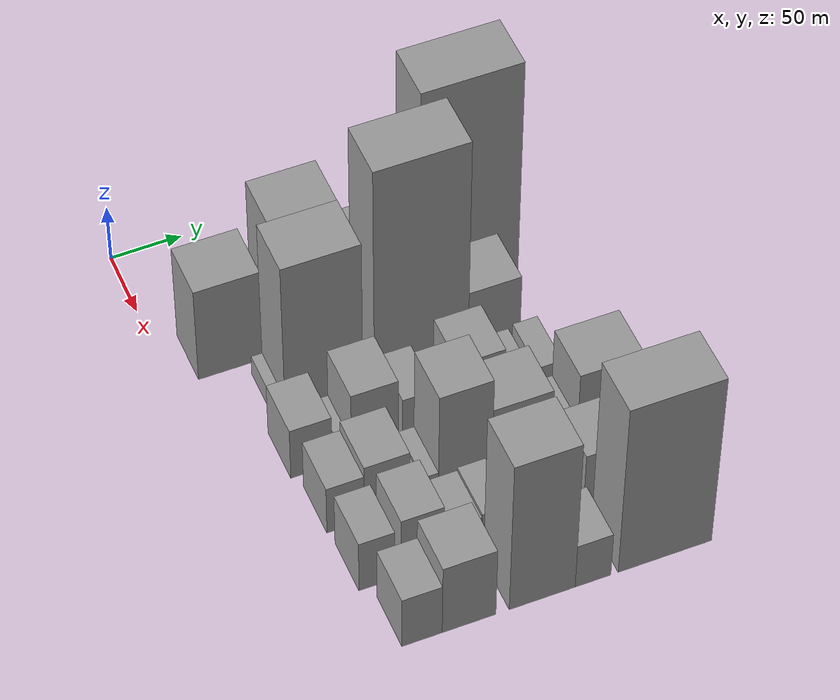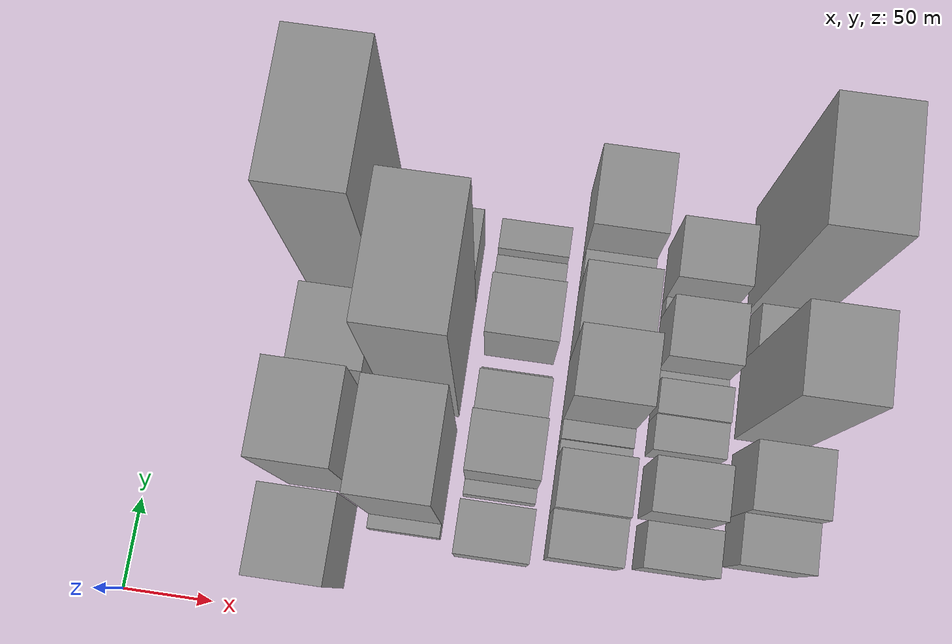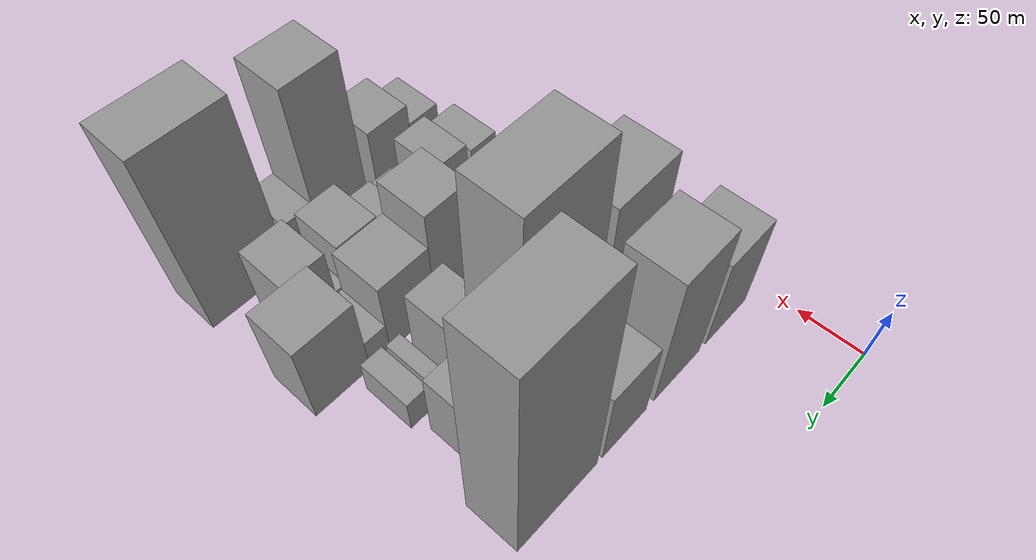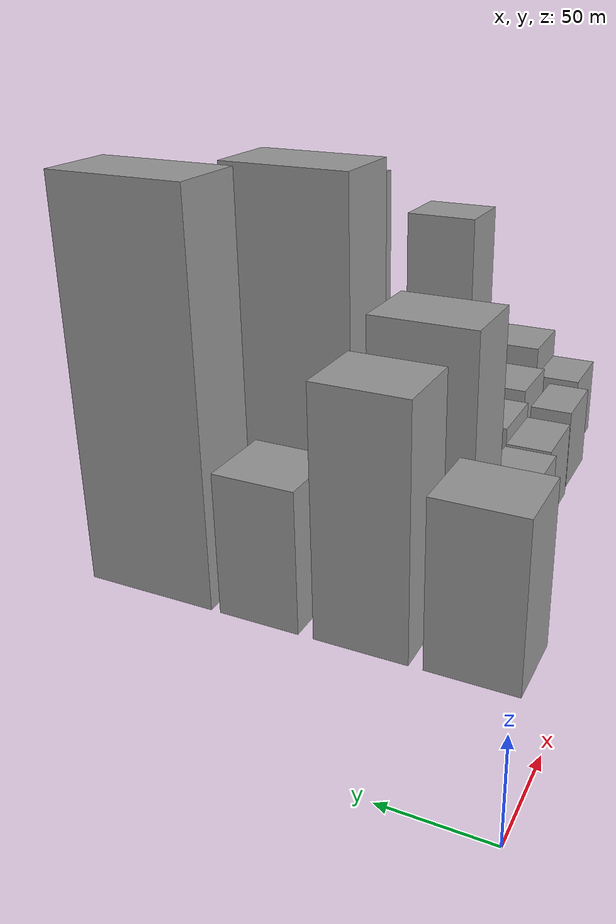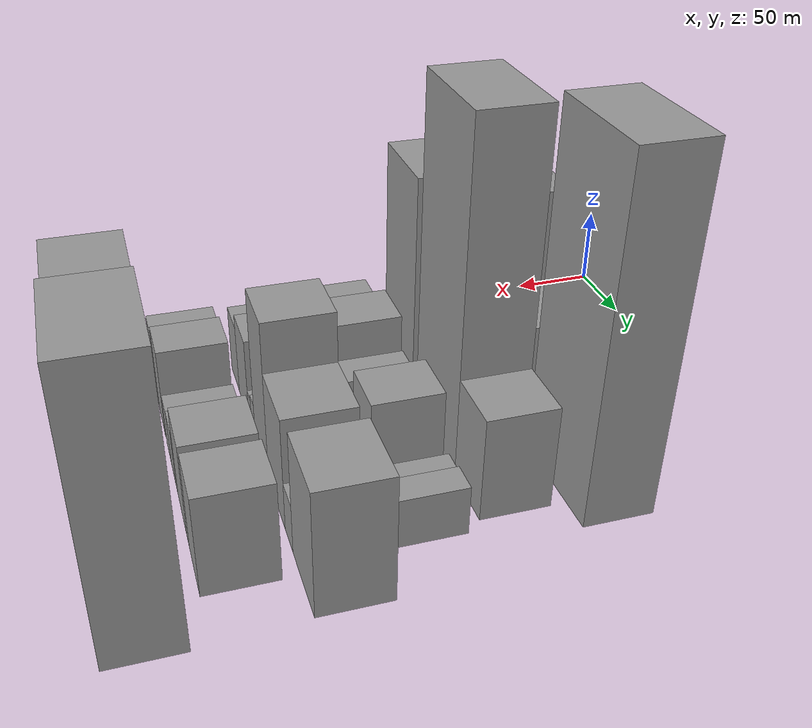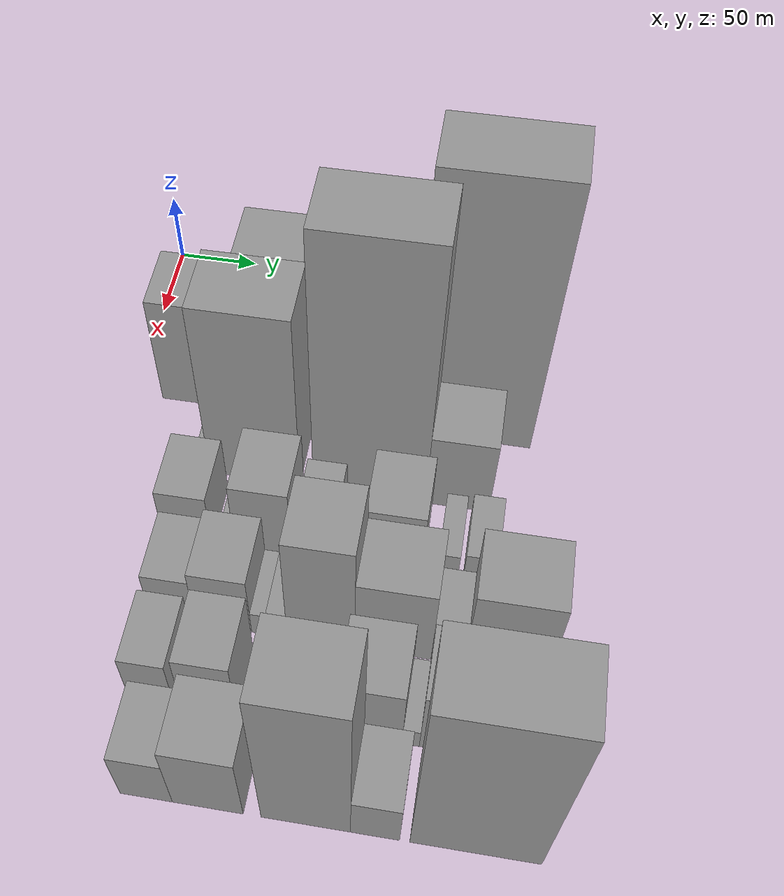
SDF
<sdf version="1.6">
 <world name="default">
  <model name="building_26">
   <static>1</static>
   <pose>100.0000 39.8798 0 0.000000 0.000000 0.000000</pose>
   <link name="link">
    <pose>0 0 43.50 0 0 0</pose>
    <collision name="collision"><geometry><box><size>40.0000 45.3134 87.0000</size></box></geometry></collision>
    <visual name="visual">
     <cast_shadows>0</cast_shadows>
     <geometry><box><size>40.0000 45.3134 87.0000</size></box></geometry>
     <material>
      <script>
       <uri>model://grey_wall/materials/scripts</uri>
       <uri>model://grey_wall/materials/textures</uri>
       <name>vrc/grey_wall</name>
      </script>
     </material>
    </visual>
   </link>
  </model>
  <model name="building_27">
   <static>1</static>
   <pose>100.0000 93.4120 0 0.000000 0.000000 0.000000</pose>
   <link name="link">
    <pose>0 0 64.50 0 0 0</pose>
    <collision name="collision"><geometry><box><size>40.0000 47.7509 129.0000</size></box></geometry></collision>
    <visual name="visual">
     <cast_shadows>0</cast_shadows>
     <geometry><box><size>40.0000 47.7509 129.0000</size></box></geometry>
     <material>
      <script>
       <uri>model://grey_wall/materials/scripts</uri>
       <uri>model://grey_wall/materials/textures</uri>
       <name>vrc/grey_wall</name>
      </script>
     </material>
    </visual>
   </link>
  </model>
  <model name="building_28">
   <static>1</static>
   <pose>100.0000 146.5997 0 0.000000 0.000000 0.000000</pose>
   <link name="link">
    <pose>0 0 37.50 0 0 0</pose>
    <collision name="collision"><geometry><box><size>40.0000 42.6245 75.0000</size></box></geometry></collision>
    <visual name="visual">
     <cast_shadows>0</cast_shadows>
     <geometry><box><size>40.0000 42.6245 75.0000</size></box></geometry>
     <material>
      <script>
       <uri>model://grey_wall/materials/scripts</uri>
       <uri>model://grey_wall/materials/textures</uri>
       <name>vrc/grey_wall</name>
      </script>
     </material>
    </visual>
   </link>
  </model>
  <model name="building_29">
   <static>1</static>
   <pose>100.0000 208.2416 0 0.000000 0.000000 0.000000</pose>
   <link name="link">
    <pose>0 0 103.50 0 0 0</pose>
    <collision name="collision"><geometry><box><size>40.0000 70.6594 207.0000</size></box></geometry></collision>
    <visual name="visual">
     <cast_shadows>0</cast_shadows>
     <geometry><box><size>40.0000 70.6594 207.0000</size></box></geometry>
     <material>
      <script>
       <uri>model://grey_wall/materials/scripts</uri>
       <uri>model://grey_wall/materials/textures</uri>
       <name>vrc/grey_wall</name>
      </script>
     </material>
    </visual>
   </link>
  </model>
  <model name="building_69">
   <static>1</static>
   <pose>149.0000 54.6834 0 0.000000 0.000000 0.000000</pose>
   <link name="link">
    <pose>0 0 9.00 0 0 0</pose>
    <collision name="collision"><geometry><box><size>40.0000 7.6520 18.0000</size></box></geometry></collision>
    <visual name="visual">
     <cast_shadows>0</cast_shadows>
     <geometry><box><size>40.0000 7.6520 18.0000</size></box></geometry>
     <material>
      <script>
       <uri>model://grey_wall/materials/scripts</uri>
       <uri>model://grey_wall/materials/textures</uri>
       <name>vrc/grey_wall</name>
      </script>
     </material>
    </visual>
   </link>
  </model>
  <model name="building_70">
   <static>1</static>
   <pose>149.0000 85.5935 0 0.000000 0.000000 0.000000</pose>
   <link name="link">
    <pose>0 0 72.00 0 0 0</pose>
    <collision name="collision"><geometry><box><size>40.0000 54.1682 144.0000</size></box></geometry></collision>
    <visual name="visual">
     <cast_shadows>0</cast_shadows>
     <geometry><box><size>40.0000 54.1682 144.0000</size></box></geometry>
     <material>
      <script>
       <uri>model://grey_wall/materials/scripts</uri>
       <uri>model://grey_wall/materials/textures</uri>
       <name>vrc/grey_wall</name>
      </script>
     </material>
    </visual>
   </link>
  </model>
  <model name="building_71">
   <static>1</static>
   <pose>149.0000 153.6814 0 0.000000 0.000000 0.000000</pose>
   <link name="link">
    <pose>0 0 103.50 0 0 0</pose>
    <collision name="collision"><geometry><box><size>40.0000 66.0074 207.0000</size></box></geometry></collision>
    <visual name="visual">
     <cast_shadows>0</cast_shadows>
     <geometry><box><size>40.0000 66.0074 207.0000</size></box></geometry>
     <material>
      <script>
       <uri>model://grey_wall/materials/scripts</uri>
       <uri>model://grey_wall/materials/textures</uri>
       <name>vrc/grey_wall</name>
      </script>
     </material>
    </visual>
   </link>
  </model>
  <model name="building_72">
   <static>1</static>
   <pose>149.0000 205.1506 0 0.000000 0.000000 0.000000</pose>
   <link name="link">
    <pose>0 0 31.50 0 0 0</pose>
    <collision name="collision"><geometry><box><size>40.0000 36.9311 63.0000</size></box></geometry></collision>
    <visual name="visual">
     <cast_shadows>0</cast_shadows>
     <geometry><box><size>40.0000 36.9311 63.0000</size></box></geometry>
     <material>
      <script>
       <uri>model://grey_wall/materials/scripts</uri>
       <uri>model://grey_wall/materials/textures</uri>
       <name>vrc/grey_wall</name>
      </script>
     </material>
    </visual>
   </link>
  </model>
  <model name="building_118">
   <static>1</static>
   <pose>198.0000 57.2891 0 0.000000 0.000000 0.000000</pose>
   <link name="link">
    <pose>0 0 24.00 0 0 0</pose>
    <collision name="collision"><geometry><box><size>40.0000 28.4041 48.0000</size></box></geometry></collision>
    <visual name="visual">
     <cast_shadows>0</cast_shadows>
     <geometry><box><size>40.0000 28.4041 48.0000</size></box></geometry>
     <material>
      <script>
       <uri>model://grey_wall/materials/scripts</uri>
       <uri>model://grey_wall/materials/textures</uri>
       <name>vrc/grey_wall</name>
      </script>
     </material>
    </visual>
   </link>
  </model>
  <model name="building_119">
   <static>1</static>
   <pose>198.0000 80.6497 0 0.000000 0.000000 0.000000</pose>
   <link name="link">
    <pose>0 0 9.00 0 0 0</pose>
    <collision name="collision"><geometry><box><size>40.0000 8.3170 18.0000</size></box></geometry></collision>
    <visual name="visual">
     <cast_shadows>0</cast_shadows>
     <geometry><box><size>40.0000 8.3170 18.0000</size></box></geometry>
     <material>
      <script>
       <uri>model://grey_wall/materials/scripts</uri>
       <uri>model://grey_wall/materials/textures</uri>
       <name>vrc/grey_wall</name>
      </script>
     </material>
    </visual>
   </link>
  </model>
  <model name="building_120">
   <static>1</static>
   <pose>198.0000 100.9588 0 0.000000 0.000000 0.000000</pose>
   <link name="link">
    <pose>0 0 31.50 0 0 0</pose>
    <collision name="collision"><geometry><box><size>40.0000 32.3012 63.0000</size></box></geometry></collision>
    <visual name="visual">
     <cast_shadows>0</cast_shadows>
     <geometry><box><size>40.0000 32.3012 63.0000</size></box></geometry>
     <material>
      <script>
       <uri>model://grey_wall/materials/scripts</uri>
       <uri>model://grey_wall/materials/textures</uri>
       <name>vrc/grey_wall</name>
      </script>
     </material>
    </visual>
   </link>
  </model>
  <model name="building_121">
   <static>1</static>
   <pose>198.0000 131.2037 0 0.000000 0.000000 0.000000</pose>
   <link name="link">
    <pose>0 0 21.00 0 0 0</pose>
    <collision name="collision"><geometry><box><size>40.0000 22.1886 42.0000</size></box></geometry></collision>
    <visual name="visual">
     <cast_shadows>0</cast_shadows>
     <geometry><box><size>40.0000 22.1886 42.0000</size></box></geometry>
     <material>
      <script>
       <uri>model://grey_wall/materials/scripts</uri>
       <uri>model://grey_wall/materials/textures</uri>
       <name>vrc/grey_wall</name>
      </script>
     </material>
    </visual>
   </link>
  </model>
  <model name="building_122">
   <static>1</static>
   <pose>198.0000 145.3058 0 0.000000 0.000000 0.000000</pose>
   <link name="link">
    <pose>0 0 7.50 0 0 0</pose>
    <collision name="collision"><geometry><box><size>40.0000 6.0156 15.0000</size></box></geometry></collision>
    <visual name="visual">
     <cast_shadows>0</cast_shadows>
     <geometry><box><size>40.0000 6.0156 15.0000</size></box></geometry>
     <material>
      <script>
       <uri>model://grey_wall/materials/scripts</uri>
       <uri>model://grey_wall/materials/textures</uri>
       <name>vrc/grey_wall</name>
      </script>
     </material>
    </visual>
   </link>
  </model>
  <model name="building_123">
   <static>1</static>
   <pose>198.0000 174.6820 0 0.000000 0.000000 0.000000</pose>
   <link name="link">
    <pose>0 0 30.00 0 0 0</pose>
    <collision name="collision"><geometry><box><size>40.0000 32.7369 60.0000</size></box></geometry></collision>
    <visual name="visual">
     <cast_shadows>0</cast_shadows>
     <geometry><box><size>40.0000 32.7369 60.0000</size></box></geometry>
     <material>
      <script>
       <uri>model://grey_wall/materials/scripts</uri>
       <uri>model://grey_wall/materials/textures</uri>
       <name>vrc/grey_wall</name>
      </script>
     </material>
    </visual>
   </link>
  </model>
  <model name="building_124">
   <static>1</static>
   <pose>198.0000 204.9367 0 0.000000 0.000000 0.000000</pose>
   <link name="link">
    <pose>0 0 13.50 0 0 0</pose>
    <collision name="collision"><geometry><box><size>40.0000 11.7725 27.0000</size></box></geometry></collision>
    <visual name="visual">
     <cast_shadows>0</cast_shadows>
     <geometry><box><size>40.0000 11.7725 27.0000</size></box></geometry>
     <material>
      <script>
       <uri>model://grey_wall/materials/scripts</uri>
       <uri>model://grey_wall/materials/textures</uri>
       <name>vrc/grey_wall</name>
      </script>
     </material>
    </visual>
   </link>
  </model>
  <model name="building_125">
   <static>1</static>
   <pose>198.0000 222.5570 0 0.000000 0.000000 0.000000</pose>
   <link name="link">
    <pose>0 0 15.00 0 0 0</pose>
    <collision name="collision"><geometry><box><size>40.0000 17.4681 30.0000</size></box></geometry></collision>
    <visual name="visual">
     <cast_shadows>0</cast_shadows>
     <geometry><box><size>40.0000 17.4681 30.0000</size></box></geometry>
     <material>
      <script>
       <uri>model://grey_wall/materials/scripts</uri>
       <uri>model://grey_wall/materials/textures</uri>
       <name>vrc/grey_wall</name>
      </script>
     </material>
    </visual>
   </link>
  </model>
  <model name="building_171">
   <static>1</static>
   <pose>247.0000 60.8885 0 0.000000 0.000000 0.000000</pose>
   <link name="link">
    <pose>0 0 22.50 0 0 0</pose>
    <collision name="collision"><geometry><box><size>40.0000 25.4568 45.0000</size></box></geometry></collision>
    <visual name="visual">
     <cast_shadows>0</cast_shadows>
     <geometry><box><size>40.0000 25.4568 45.0000</size></box></geometry>
     <material>
      <script>
       <uri>model://grey_wall/materials/scripts</uri>
       <uri>model://grey_wall/materials/textures</uri>
       <name>vrc/grey_wall</name>
      </script>
     </material>
    </visual>
   </link>
  </model>
  <model name="building_172">
   <static>1</static>
   <pose>247.0000 89.1669 0 0.000000 0.000000 0.000000</pose>
   <link name="link">
    <pose>0 0 27.00 0 0 0</pose>
    <collision name="collision"><geometry><box><size>40.0000 31.1001 54.0000</size></box></geometry></collision>
    <visual name="visual">
     <cast_shadows>0</cast_shadows>
     <geometry><box><size>40.0000 31.1001 54.0000</size></box></geometry>
     <material>
      <script>
       <uri>model://grey_wall/materials/scripts</uri>
       <uri>model://grey_wall/materials/textures</uri>
       <name>vrc/grey_wall</name>
      </script>
     </material>
    </visual>
   </link>
  </model>
  <model name="building_173">
   <static>1</static>
   <pose>247.0000 109.0897 0 0.000000 0.000000 0.000000</pose>
   <link name="link">
    <pose>0 0 10.50 0 0 0</pose>
    <collision name="collision"><geometry><box><size>40.0000 8.7455 21.0000</size></box></geometry></collision>
    <visual name="visual">
     <cast_shadows>0</cast_shadows>
     <geometry><box><size>40.0000 8.7455 21.0000</size></box></geometry>
     <material>
      <script>
       <uri>model://grey_wall/materials/scripts</uri>
       <uri>model://grey_wall/materials/textures</uri>
       <name>vrc/grey_wall</name>
      </script>
     </material>
    </visual>
   </link>
  </model>
  <model name="building_174">
   <static>1</static>
   <pose>247.0000 118.8512 0 0.000000 0.000000 0.000000</pose>
   <link name="link">
    <pose>0 0 12.00 0 0 0</pose>
    <collision name="collision"><geometry><box><size>40.0000 10.7775 24.0000</size></box></geometry></collision>
    <visual name="visual">
     <cast_shadows>0</cast_shadows>
     <geometry><box><size>40.0000 10.7775 24.0000</size></box></geometry>
     <material>
      <script>
       <uri>model://grey_wall/materials/scripts</uri>
       <uri>model://grey_wall/materials/textures</uri>
       <name>vrc/grey_wall</name>
      </script>
     </material>
    </visual>
   </link>
  </model>
  <model name="building_175">
   <static>1</static>
   <pose>247.0000 142.6485 0 0.000000 0.000000 0.000000</pose>
   <link name="link">
    <pose>0 0 49.50 0 0 0</pose>
    <collision name="collision"><geometry><box><size>40.0000 36.8170 99.0000</size></box></geometry></collision>
    <visual name="visual">
     <cast_shadows>0</cast_shadows>
     <geometry><box><size>40.0000 36.8170 99.0000</size></box></geometry>
     <material>
      <script>
       <uri>model://grey_wall/materials/scripts</uri>
       <uri>model://grey_wall/materials/textures</uri>
       <name>vrc/grey_wall</name>
      </script>
     </material>
    </visual>
   </link>
  </model>
  <model name="building_176">
   <static>1</static>
   <pose>247.0000 181.7290 0 0.000000 0.000000 0.000000</pose>
   <link name="link">
    <pose>0 0 34.50 0 0 0</pose>
    <collision name="collision"><geometry><box><size>40.0000 41.3440 69.0000</size></box></geometry></collision>
    <visual name="visual">
     <cast_shadows>0</cast_shadows>
     <geometry><box><size>40.0000 41.3440 69.0000</size></box></geometry>
     <material>
      <script>
       <uri>model://grey_wall/materials/scripts</uri>
       <uri>model://grey_wall/materials/textures</uri>
       <name>vrc/grey_wall</name>
      </script>
     </material>
    </visual>
   </link>
  </model>
  <model name="building_177">
   <static>1</static>
   <pose>247.0000 211.2641 0 0.000000 0.000000 0.000000</pose>
   <link name="link">
    <pose>0 0 15.00 0 0 0</pose>
    <collision name="collision"><geometry><box><size>40.0000 17.7262 30.0000</size></box></geometry></collision>
    <visual name="visual">
     <cast_shadows>0</cast_shadows>
     <geometry><box><size>40.0000 17.7262 30.0000</size></box></geometry>
     <material>
      <script>
       <uri>model://grey_wall/materials/scripts</uri>
       <uri>model://grey_wall/materials/textures</uri>
       <name>vrc/grey_wall</name>
      </script>
     </material>
    </visual>
   </link>
  </model>
  <model name="building_178">
   <static>1</static>
   <pose>247.0000 242.5564 0 0.000000 0.000000 0.000000</pose>
   <link name="link">
    <pose>0 0 37.50 0 0 0</pose>
    <collision name="collision"><geometry><box><size>40.0000 44.8584 75.0000</size></box></geometry></collision>
    <visual name="visual">
     <cast_shadows>0</cast_shadows>
     <geometry><box><size>40.0000 44.8584 75.0000</size></box></geometry>
     <material>
      <script>
       <uri>model://grey_wall/materials/scripts</uri>
       <uri>model://grey_wall/materials/textures</uri>
       <name>vrc/grey_wall</name>
      </script>
     </material>
    </visual>
   </link>
  </model>
  <model name="building_223">
   <static>1</static>
   <pose>296.0000 62.0898 0 0.000000 0.000000 0.000000</pose>
   <link name="link">
    <pose>0 0 24.00 0 0 0</pose>
    <collision name="collision"><geometry><box><size>40.0000 24.2147 48.0000</size></box></geometry></collision>
    <visual name="visual">
     <cast_shadows>0</cast_shadows>
     <geometry><box><size>40.0000 24.2147 48.0000</size></box></geometry>
     <material>
      <script>
       <uri>model://grey_wall/materials/scripts</uri>
       <uri>model://grey_wall/materials/textures</uri>
       <name>vrc/grey_wall</name>
      </script>
     </material>
    </visual>
   </link>
  </model>
  <model name="building_224">
   <static>1</static>
   <pose>296.0000 92.7421 0 0.000000 0.000000 0.000000</pose>
   <link name="link">
    <pose>0 0 28.50 0 0 0</pose>
    <collision name="collision"><geometry><box><size>40.0000 29.0899 57.0000</size></box></geometry></collision>
    <visual name="visual">
     <cast_shadows>0</cast_shadows>
     <geometry><box><size>40.0000 29.0899 57.0000</size></box></geometry>
     <material>
      <script>
       <uri>model://grey_wall/materials/scripts</uri>
       <uri>model://grey_wall/materials/textures</uri>
       <name>vrc/grey_wall</name>
      </script>
     </material>
    </visual>
   </link>
  </model>
  <model name="building_225">
   <static>1</static>
   <pose>296.0000 123.1011 0 0.000000 0.000000 0.000000</pose>
   <link name="link">
    <pose>0 0 16.50 0 0 0</pose>
    <collision name="collision"><geometry><box><size>40.0000 19.6282 33.0000</size></box></geometry></collision>
    <visual name="visual">
     <cast_shadows>0</cast_shadows>
     <geometry><box><size>40.0000 19.6282 33.0000</size></box></geometry>
     <material>
      <script>
       <uri>model://grey_wall/materials/scripts</uri>
       <uri>model://grey_wall/materials/textures</uri>
       <name>vrc/grey_wall</name>
      </script>
     </material>
    </visual>
   </link>
  </model>
  <model name="building_226">
   <static>1</static>
   <pose>296.0000 142.6010 0 0.000000 0.000000 0.000000</pose>
   <link name="link">
    <pose>0 0 18.00 0 0 0</pose>
    <collision name="collision"><geometry><box><size>40.0000 19.3716 36.0000</size></box></geometry></collision>
    <visual name="visual">
     <cast_shadows>0</cast_shadows>
     <geometry><box><size>40.0000 19.3716 36.0000</size></box></geometry>
     <material>
      <script>
       <uri>model://grey_wall/materials/scripts</uri>
       <uri>model://grey_wall/materials/textures</uri>
       <name>vrc/grey_wall</name>
      </script>
     </material>
    </visual>
   </link>
  </model>
  <model name="building_227">
   <static>1</static>
   <pose>296.0000 156.1678 0 0.000000 0.000000 0.000000</pose>
   <link name="link">
    <pose>0 0 9.00 0 0 0</pose>
    <collision name="collision"><geometry><box><size>40.0000 7.7618 18.0000</size></box></geometry></collision>
    <visual name="visual">
     <cast_shadows>0</cast_shadows>
     <geometry><box><size>40.0000 7.7618 18.0000</size></box></geometry>
     <material>
      <script>
       <uri>model://grey_wall/materials/scripts</uri>
       <uri>model://grey_wall/materials/textures</uri>
       <name>vrc/grey_wall</name>
      </script>
     </material>
    </visual>
   </link>
  </model>
  <model name="building_228">
   <static>1</static>
   <pose>296.0000 176.8755 0 0.000000 0.000000 0.000000</pose>
   <link name="link">
    <pose>0 0 28.50 0 0 0</pose>
    <collision name="collision"><geometry><box><size>40.0000 33.6536 57.0000</size></box></geometry></collision>
    <visual name="visual">
     <cast_shadows>0</cast_shadows>
     <geometry><box><size>40.0000 33.6536 57.0000</size></box></geometry>
     <material>
      <script>
       <uri>model://grey_wall/materials/scripts</uri>
       <uri>model://grey_wall/materials/textures</uri>
       <name>vrc/grey_wall</name>
      </script>
     </material>
    </visual>
   </link>
  </model>
  <model name="building_229">
   <static>1</static>
   <pose>296.0000 198.1638 0 0.000000 0.000000 0.000000</pose>
   <link name="link">
    <pose>0 0 9.00 0 0 0</pose>
    <collision name="collision"><geometry><box><size>40.0000 8.9232 18.0000</size></box></geometry></collision>
    <visual name="visual">
     <cast_shadows>0</cast_shadows>
     <geometry><box><size>40.0000 8.9232 18.0000</size></box></geometry>
     <material>
      <script>
       <uri>model://grey_wall/materials/scripts</uri>
       <uri>model://grey_wall/materials/textures</uri>
       <name>vrc/grey_wall</name>
      </script>
     </material>
    </visual>
   </link>
  </model>
  <model name="building_230">
   <static>1</static>
   <pose>296.0000 219.7651 0 0.000000 0.000000 0.000000</pose>
   <link name="link">
    <pose>0 0 30.00 0 0 0</pose>
    <collision name="collision"><geometry><box><size>40.0000 34.2794 60.0000</size></box></geometry></collision>
    <visual name="visual">
     <cast_shadows>0</cast_shadows>
     <geometry><box><size>40.0000 34.2794 60.0000</size></box></geometry>
     <material>
      <script>
       <uri>model://grey_wall/materials/scripts</uri>
       <uri>model://grey_wall/materials/textures</uri>
       <name>vrc/grey_wall</name>
      </script>
     </material>
    </visual>
   </link>
  </model>
  <model name="building_276">
   <static>1</static>
   <pose>345.0000 71.8771 0 0.000000 0.000000 0.000000</pose>
   <link name="link">
    <pose>0 0 24.00 0 0 0</pose>
    <collision name="collision"><geometry><box><size>40.0000 26.9020 48.0000</size></box></geometry></collision>
    <visual name="visual">
     <cast_shadows>0</cast_shadows>
     <geometry><box><size>40.0000 26.9020 48.0000</size></box></geometry>
     <material>
      <script>
       <uri>model://grey_wall/materials/scripts</uri>
       <uri>model://grey_wall/materials/textures</uri>
       <name>vrc/grey_wall</name>
      </script>
     </material>
    </visual>
   </link>
  </model>
  <model name="building_277">
   <static>1</static>
   <pose>345.0000 103.3448 0 0.000000 0.000000 0.000000</pose>
   <link name="link">
    <pose>0 0 33.00 0 0 0</pose>
    <collision name="collision"><geometry><box><size>40.0000 36.0334 66.0000</size></box></geometry></collision>
    <visual name="visual">
     <cast_shadows>0</cast_shadows>
     <geometry><box><size>40.0000 36.0334 66.0000</size></box></geometry>
     <material>
      <script>
       <uri>model://grey_wall/materials/scripts</uri>
       <uri>model://grey_wall/materials/textures</uri>
       <name>vrc/grey_wall</name>
      </script>
     </material>
    </visual>
   </link>
  </model>
  <model name="building_278">
   <static>1</static>
   <pose>345.0000 152.7475 0 0.000000 0.000000 0.000000</pose>
   <link name="link">
    <pose>0 0 72.00 0 0 0</pose>
    <collision name="collision"><geometry><box><size>40.0000 44.7719 144.0000</size></box></geometry></collision>
    <visual name="visual">
     <cast_shadows>0</cast_shadows>
     <geometry><box><size>40.0000 44.7719 144.0000</size></box></geometry>
     <material>
      <script>
       <uri>model://grey_wall/materials/scripts</uri>
       <uri>model://grey_wall/materials/textures</uri>
       <name>vrc/grey_wall</name>
      </script>
     </material>
    </visual>
   </link>
  </model>
  <model name="building_279">
   <static>1</static>
   <pose>345.0000 187.3001 0 0.000000 0.000000 0.000000</pose>
   <link name="link">
    <pose>0 0 21.00 0 0 0</pose>
    <collision name="collision"><geometry><box><size>40.0000 24.3334 42.0000</size></box></geometry></collision>
    <visual name="visual">
     <cast_shadows>0</cast_shadows>
     <geometry><box><size>40.0000 24.3334 42.0000</size></box></geometry>
     <material>
      <script>
       <uri>model://grey_wall/materials/scripts</uri>
       <uri>model://grey_wall/materials/textures</uri>
       <name>vrc/grey_wall</name>
      </script>
     </material>
    </visual>
   </link>
  </model>
  <model name="building_280">
   <static>1</static>
   <pose>345.0000 236.6832 0 0.000000 0.000000 0.000000</pose>
   <link name="link">
    <pose>0 0 81.00 0 0 0</pose>
    <collision name="collision"><geometry><box><size>40.0000 64.4327 162.0000</size></box></geometry></collision>
    <visual name="visual">
     <cast_shadows>0</cast_shadows>
     <geometry><box><size>40.0000 64.4327 162.0000</size></box></geometry>
     <material>
      <script>
       <uri>model://grey_wall/materials/scripts</uri>
       <uri>model://grey_wall/materials/textures</uri>
       <name>vrc/grey_wall</name>
      </script>
     </material>
    </visual>
   </link>
  </model>
 </world>
</sdf>
